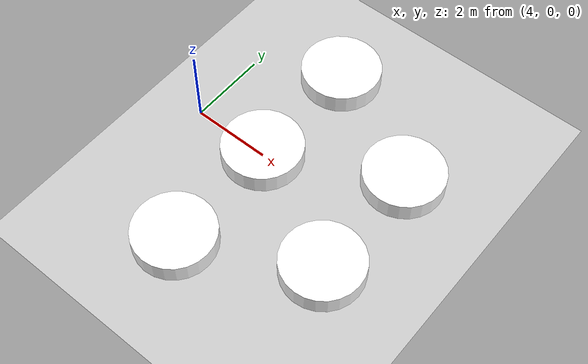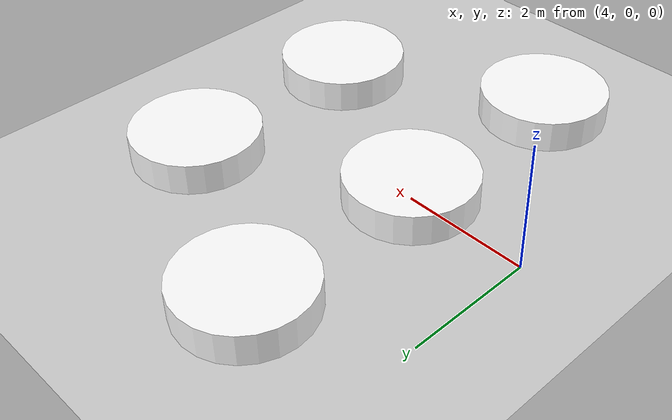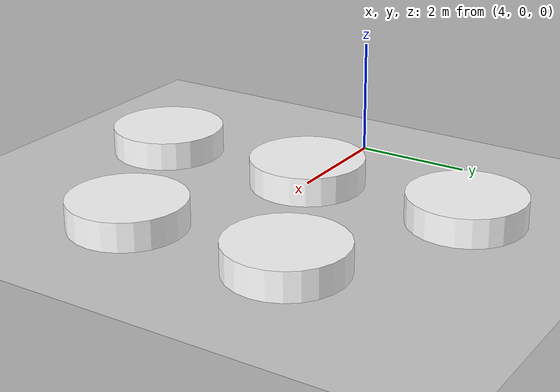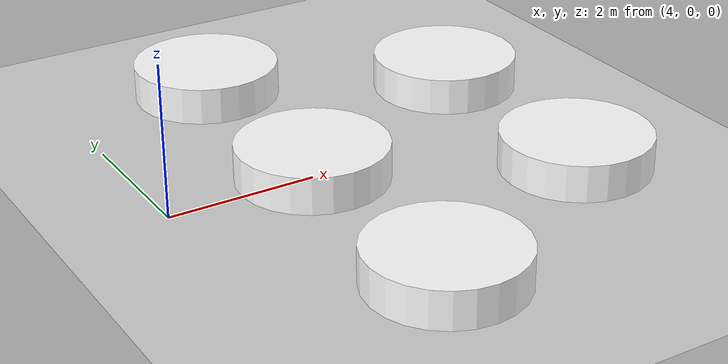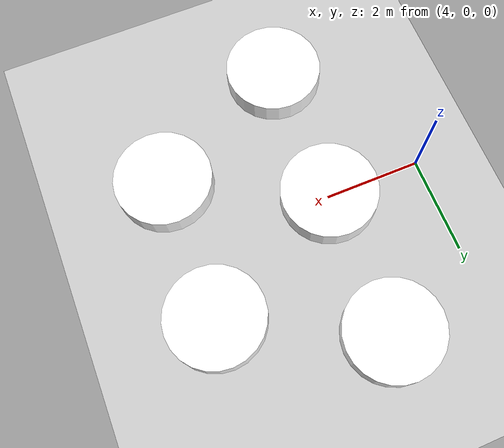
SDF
<sdf version='1.6'>
  <world name='default'>
    <!-- A global light source -->
    <include>
      <uri>model://sun</uri>
    </include>

    <!-- A ground plane -->
    <include>
      <uri>model://ground_plane</uri>
    </include>

    <physics type="ode">
      <real_time_update_rate>100.0</real_time_update_rate>
      <max_step_size>0.01</max_step_size>
      <real_time_factor>0.5</real_time_factor>
      <ode>
        <solver>
          <type>quick</type>
          <iters>150</iters>
          <precon_iters>0</precon_iters>
          <sor>1.400000</sor>
          <use_dynamic_moi_rescaling>1</use_dynamic_moi_rescaling>
        </solver>
        <constraints>
          <cfm>0.00001</cfm>
          <erp>0.2</erp>
          <contact_max_correcting_vel>2000.000000</contact_max_correcting_vel>
          <contact_surface_layer>0.01000</contact_surface_layer>
        </constraints>
      </ode>
    </physics>

    <!-- Load world -->
    <include>
      <uri>model://simple_world_2</uri>
    </include>

    <scene>
      <ambient>0.4 0.4 0.4 1</ambient>
      <background>0.7 0.7 0.7 1</background>
      <shadows>false</shadows>
    </scene>

    <gui fullscreen='0'>
      <camera name='user_camera'>
        <pose>0.8 0.0 12.0 0 1.5708 0</pose>
        <view_controller>orbit</view_controller>
      </camera>
    </gui>
  </world>
</sdf>

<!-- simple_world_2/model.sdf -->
<sdf version='1.6'>
  <model name='simple'>
    <link name='fixed'></link>
    <pose frame=''>0 0 0 0 -0 0</pose>
    <link name='Cylinder_2'>
      <collision name='Cylinder_2_Collision'>
        <geometry>
          <cylinder>
            <radius>1.0</radius>
            <length>0.5</length>
          </cylinder>
        </geometry>
        <pose frame=''>0 0 0.25 0 -0 0</pose>
      </collision>
      <visual name='Cylinder_2_Visual'>
        <pose frame=''>0 0 0.25 0 -0 0</pose>
        <geometry>
          <cylinder>
            <radius>1.0</radius>
            <length>0.5</length>
          </cylinder>
        </geometry>
        <material>
          <ambient>1 1 1 1</ambient>
        </material>
      </visual>
      <pose frame=''>6.0 0.0 0 0 0 0</pose>
    </link>
     <link name='Cylinder_3'>
      <collision name='Cylinder_3_Collision'>
        <geometry>
          <cylinder>
            <radius>1.0</radius>
            <length>0.5</length>
          </cylinder>
        </geometry>
        <pose frame=''>0 0 0.25 0 -0 0</pose>
      </collision>
      <visual name='Cylinder_3_Visual'>
        <pose frame=''>0 0 0.25 0 -0 0</pose>
        <geometry>
          <cylinder>
            <radius>1.0</radius>
            <length>0.5</length>
          </cylinder>
        </geometry>
        <material>
          <ambient>1 1 1 1</ambient>
        </material>
      </visual>
      <pose frame=''>6.0 -3.0 0 0 0 0</pose>
    </link>
    <link name='Cylinder_4'>
      <collision name='Cylinder_4_Collision'>
        <geometry>
          <cylinder>
            <radius>1.0</radius>
            <length>0.5</length>
          </cylinder>
        </geometry>
        <pose frame=''>0 0 0.25 0 -0 0</pose>
      </collision>
      <visual name='Cylinder_4_Visual'>
        <pose frame=''>0 0 0.25 0 -0 0</pose>
        <geometry>
          <cylinder>
            <radius>1.0</radius>
            <length>0.5</length>
          </cylinder>
        </geometry>
        <material>
          <ambient>1 1 1 1</ambient>
        </material>
      </visual>
      <pose frame=''>6.0 3.0 0 0 0 0</pose>
       </link>
      <link name='Cylinder_5'>
      <collision name='Cylinder_5_Collision'>
        <geometry>
          <cylinder>
            <radius>1.0</radius>
            <length>0.5</length>
          </cylinder>
        </geometry>
        <pose frame=''>0 0 0.25 0 -0 0</pose>
      </collision>
      <visual name='Cylinder_5_Visual'>
        <pose frame=''>0 0 0.25 0 -0 0</pose>
        <geometry>
          <cylinder>
            <radius>1.0</radius>
            <length>0.5</length>
          </cylinder>
        </geometry>
        <material>
          <ambient>1 1 1 1</ambient>
        </material>
      </visual>
      <pose frame=''>9.0 1.5 0 0 0 0</pose>
    </link>
    <link name='Cylinder_6'>
      <collision name='Cylinder_4_Collision'>
        <geometry>
          <cylinder>
            <radius>1.0</radius>
            <length>0.5</length>
          </cylinder>
        </geometry>
        <pose frame=''>0 0 0.25 0 -0 0</pose>
      </collision>
      <visual name='Cylinder_6_Visual'>
        <pose frame=''>0 0 0.25 0 -0 0</pose>
        <geometry>
          <cylinder>
            <radius>1.0</radius>
            <length>0.5</length>
          </cylinder>
        </geometry>
        <material>
          <ambient>1 1 1 1</ambient>
        </material>
      </visual>
      <pose frame=''>9.0 -1.5 0 0 0 0</pose>
      </link>
    <static>1</static>
  </model>
</sdf>
